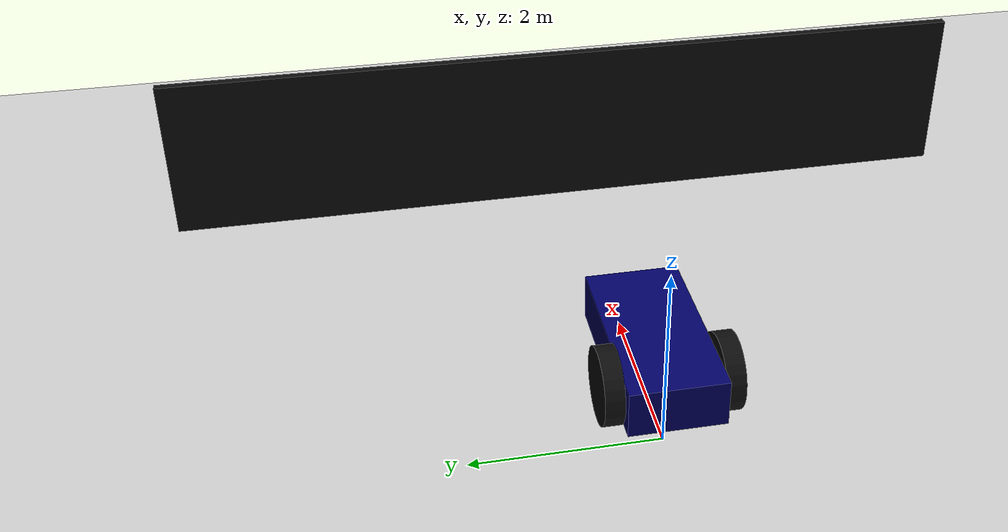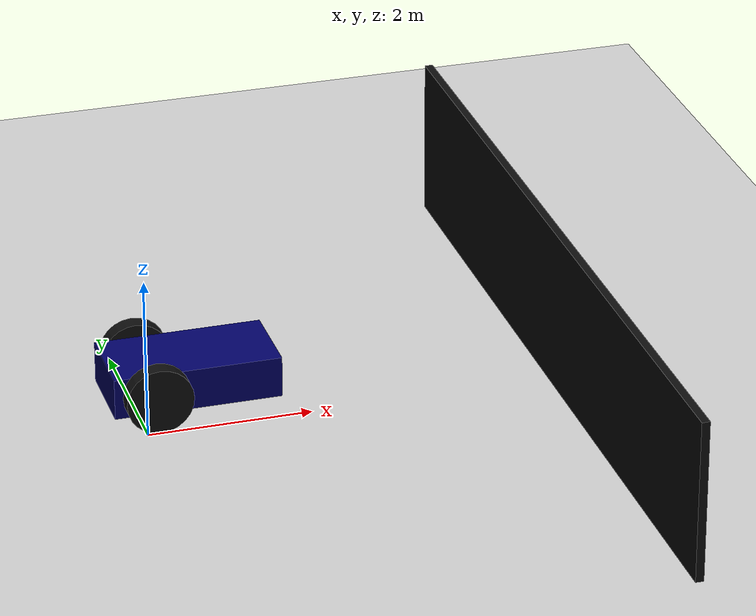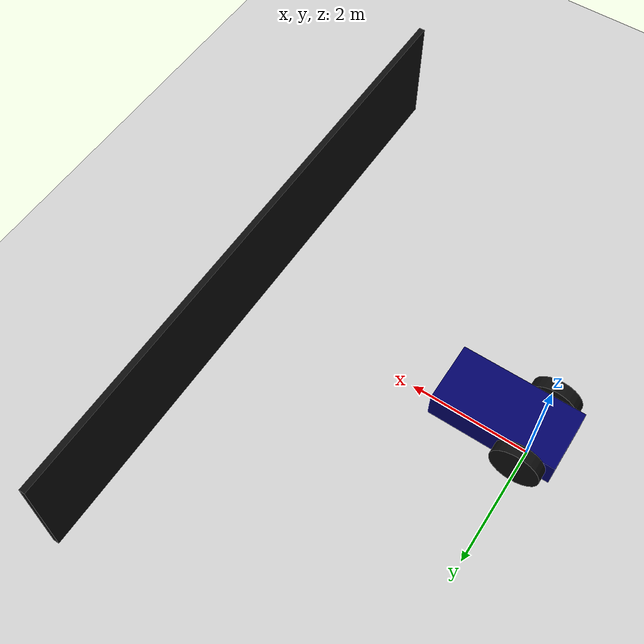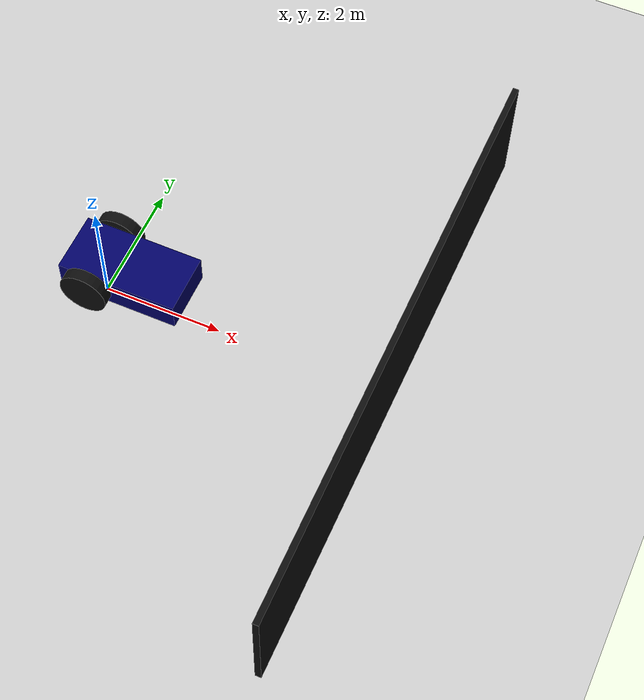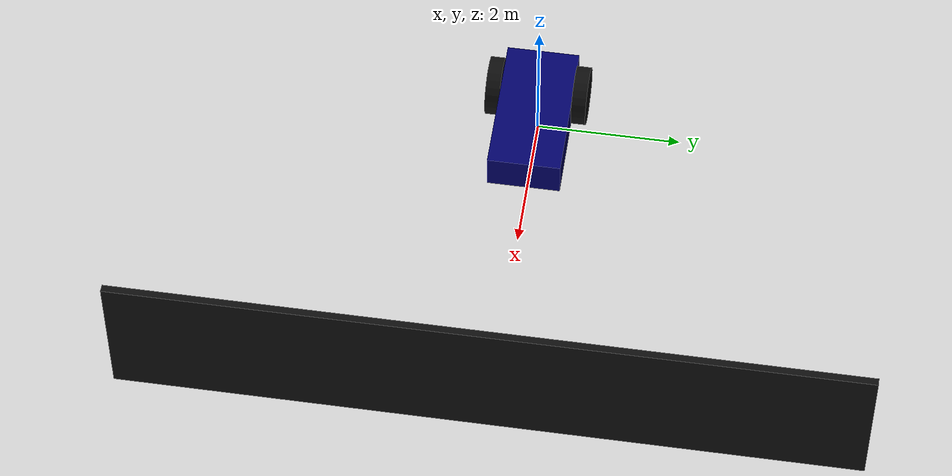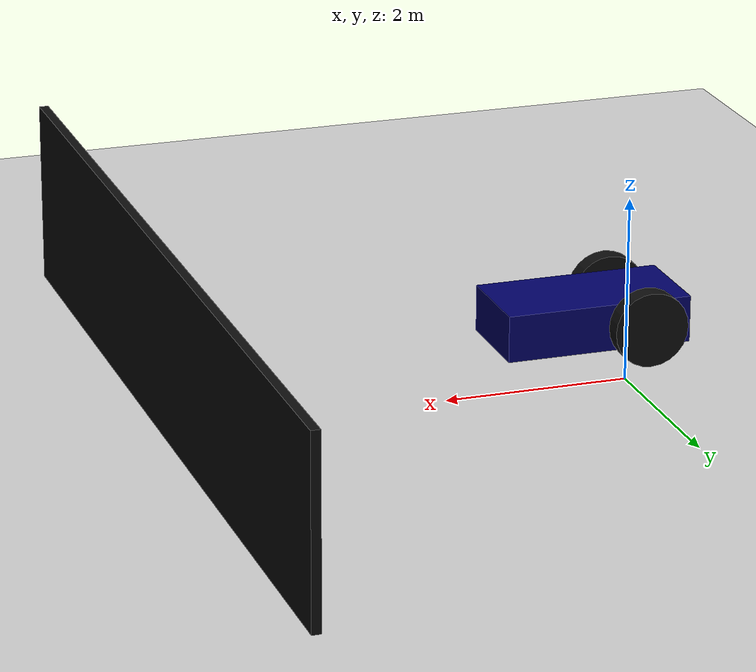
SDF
<sdf version="1.7">
  <world name="default">
    <plugin filename="libignition-gazebo-contact-system.so" name="ignition::gazebo::systems::Contact"/>

    <gui fullscreen="0">

      <!-- 3D SCENE -->
      <plugin filename="GzScene3D" name="3D View">
        <ignition-gui>
          <title>3D View</title>
          <property type="bool" key="showTitleBar">false</property>
          <property type="string" key="state">docked</property>
        </ignition-gui>

        <engine>ogre2</engine>
        <scene>scene</scene>
        <ambient_light>0.4 0.4 0.4</ambient_light>
        <background_color>0.8 0.8 0.8</background_color>
      </plugin>

      <!-- WORLD CONTROL -->
      <plugin filename="WorldControl" name="World Control">
        <ignition-gui>
          <title>World Control</title>
          <property type="bool" key="showTitleBar">false</property>
          <property type="bool" key="resizable">false</property>
          <property type="double" key="height">72</property>
          <property type="double" key="width">121</property>
          <property type="double" key="z">1</property>

          <property type="string" key="state">floating</property>
          <anchors target="3D View">
            <line own="left" target="left"/>
            <line own="bottom" target="bottom"/>
          </anchors>
        </ignition-gui>

        <play_pause>true</play_pause>
        <step>true</step>
        <start_paused>true</start_paused>
        <service>world/tubes_world/control</service>
        <stats_topic>world/tubes_world/stats</stats_topic>
      </plugin>

      <!-- WORLD STATS -->
      <plugin filename="WorldStats" name="World Stats">
        <ignition-gui>
          <title>World Stats</title>
          <property type="bool" key="showTitleBar">false</property>
          <property type="bool" key="resizable">false</property>
          <property type="double" key="height">110</property>
          <property type="double" key="width">290</property>
          <property type="double" key="z">1</property>

          <property type="string" key="state">floating</property>
          <anchors target="3D View">
            <line own="right" target="right"/>
            <line own="bottom" target="bottom"/>
          </anchors>
        </ignition-gui>

        <sim_time>true</sim_time>
        <real_time>true</real_time>
        <real_time_factor>true</real_time_factor>
        <iterations>true</iterations>
        <topic>world/tubes_world/stats</topic>
      </plugin>

      <plugin filename="EntityTree" name="Entity Tree">
      </plugin>

      <plugin filename="KeyPublisher" name="Key Publisher"/>
    </gui>

    <physics name='1ms' type='ignored'>
      <max_step_size>0.001</max_step_size>
      <real_time_factor>1</real_time_factor>
      <real_time_update_rate>1000</real_time_update_rate>
    </physics>
    <plugin name='gz::sim::systems::Physics' filename='gz-sim-physics-system'/>
    <plugin name='gz::sim::systems::UserCommands' filename='gz-sim-user-commands-system'/>
    <plugin name='gz::sim::systems::SceneBroadcaster' filename='gz-sim-scene-broadcaster-system'/>
    <plugin name='gz::sim::systems::Contact' filename='gz-sim-contact-system'/>
    <gravity>0 0 -9.8000000000000007</gravity>
    <magnetic_field>5.5644999999999998e-06 2.2875799999999999e-05 -4.2388400000000002e-05</magnetic_field>
    <atmosphere type='adiabatic'/>
    <scene>
      <ambient>0.400000006 0.400000006 0.400000006 1</ambient>
      <background>0.699999988 0.699999988 0.699999988 1</background>
      <shadows>true</shadows>
    </scene>

    <light name="sun" type="directional">
        <pose>0 0 10 0 -0.7854 0</pose>
        <diffuse>1.0 1.0 1.0 1.0</diffuse>
        <specular>1.0 1.0 1.0 1.0</specular>
        <attenuation>
            <range>100</range>
            <constant>0.1</constant>
            <linear>0.01</linear>
            <quadratic>0.002</quadratic>
        </attenuation>
        <cast_shadows>true</cast_shadows>
    </light>

    <light name="ambient_light" type="point">
        <pose>0 0 5 0 0 0</pose>
        <diffuse>0.5 0.5 0.5 1.0</diffuse>
        <specular>0.2 0.2 0.2 1.0</specular>
        <attenuation>
            <range>50</range>
            <constant>0.1</constant>
            <linear>0.1</linear>
            <quadratic>0.02</quadratic>
        </attenuation>
        <cast_shadows>false</cast_shadows>
    </light>

    <model name="ground_plane">
      <static>true</static>
      <link name="ground_link">
        <collision name="collision">
          <geometry>
            <plane>
              <normal>0 0 1</normal>
              <size>100 100</size>
            </plane>
          </geometry>
        </collision>
        <visual name="visual">
          <geometry>
            <plane>
              <normal>0 0 1</normal>
              <size>100 100</size>
            </plane>
          </geometry>
          <material>
            <script>
              <uri>file://media/materials/scripts/gazebo.material</uri>
              <name>Gazebo/Grey</name>
            </script>
          </material>
        </visual>
      </link>
    </model>

    <model name="wall">
      <static>true</static>
      <link name="wall_link">
        <collision name="collision">
          <geometry>
            <box>
              <size>0.1 10 2</size>
            </box>
          </geometry>
        </collision>
        <visual name="visual">
          <geometry>
            <box>
              <size>0.1 10 2</size>
            </box>
          </geometry>
          <material>
            <ambient>0.05 0.05 0.05 1</ambient>
            <diffuse>0.05 0.05 0.05 1</diffuse>
            <specular>0.1 0.1 0.1 1</specular>
          </material>
        </visual>

        <sensor name="wall_contact" type="contact">
          <contact>
            <collision>collision</collision>
          </contact>
        </sensor>
      </link>
      <plugin filename="libignition-gazebo-touchplugin-system.so" name="ignition::gazebo::systems::TouchPlugin">
        <target>my_robot</target>
        <namespace>wall</namespace>
        <time>0.001</time>
        <enable>true</enable>
      </plugin>
      <pose>5 0 1 0 0 0</pose>
    </model>

    <plugin filename="libignition-gazebo-triggered-publisher-system.so" name="ignition::gazebo::systems::TriggeredPublisher">
      <input type="gz.msgs.Boolean" topic="/wall/touched">
        <match>data: true</match>
      </input>
      <output type="gz.msgs.Twist" topic="/cmd_vel">
        linear: {x: 0.0}, angular: {z: 0.0}
      </output>

    </plugin>

    <include>
      <uri>/home/ahmrrzz/tubes_sekuro_ws/src/my_robot/models/my_robot/model.sdf</uri>
      <pose>0 0 0.4 0 0 0</pose>
    </include>

  </world>
</sdf>

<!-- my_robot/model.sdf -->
<sdf version="1.7">

    <model name="my_robot" canonical_link="chassis">

        <frame name="lidar_frame" attached_to="chassis">
            <pose>0.8 0 0.5 0 0 0</pose>
        </frame>

        <!-- CHASSIS -->
        <link name="chassis">
            <pose relative_to="__model__">0.5 0 0.4 0 0 0</pose>
            <inertial>
            <mass>1.14395</mass>
            <inertia>
                <ixx>0.095329</ixx>
                <ixy>0</ixy>
                <ixz>0</ixz>
                <iyy>0.381317</iyy>
                <iyz>0</iyz>
                <izz>0.476646</izz>
            </inertia>
            </inertial>

            <!-- VISUAL -->
            <visual name="visual">
            <geometry>
                <box>
                <size>2.0 1.0 0.5</size>
                </box>
            </geometry>
            <!-- COLOR -->
            <material>
                <ambient>0.0 0.0 0.3 1</ambient>
                <diffuse>0.0 0.0 0.4 1</diffuse>
                <specular>0.1 0.1 0.3 1</specular>
            </material>
            </visual>

            <collision name="collision">
                <geometry>
                    <box>
                    <size>2.0 1.0 0.5</size>
                    </box>
                </geometry>
            </collision>

            <sensor name="imu_sensor" type="imu">
                <always_on>true</always_on>
                <update_rate>1</update_rate>
                <visualize>true</visualize>
                <topic>imu</topic>
            </sensor>

            <sensor name="gpu_lidar" type="gpu_lidar">
                <pose relative_to="lidar_frame">0 0 0 0 0 0</pose>
                <topic>lidar</topic>
                <update_rate>10</update_rate>
                <ray>
                    <scan>
                        <horizontal>
                            <samples>640</samples>
                            <resolution>1</resolution>
                            <min_angle>-1.396263</min_angle>
                            <max_angle>1.396263</max_angle>
                        </horizontal>
                        <vertical>
                            <samples>1</samples>
                            <resolution>0.01</resolution>
                            <min_angle>0</min_angle>
                            <max_angle>0</max_angle>
                        </vertical>
                    </scan>
                    <range>
                        <min>0.08</min>
                        <max>10.0</max>
                        <resolution>0.01</resolution>
                    </range>
                </ray>
                <always_on>true</always_on>
                <visualize>true</visualize>

            </sensor>
        </link>

        <!-- RODA KIRI -->
        <link name="left_wheel">
            <pose relative_to="chassis">-0.5 0.6 0 -1.5707 0 0</pose>
            <inertial>
            <mass>1</mass>
            <inertia>
                <ixx>0.043333</ixx>
                <ixy>0</ixy>
                <ixz>0</ixz>
                <iyy>0.043333</iyy>
                <iyz>0</iyz>
                <izz>0.08</izz>
            </inertia>
            </inertial>

            <visual name="visual">
            <geometry>
                <cylinder>
                <radius>0.4</radius>
                <length>0.2</length>
                </cylinder>
            </geometry>
            <material>
                <ambient>0.05 0.05 0.05 1</ambient>
                <diffuse>0.05 0.05 0.05 1</diffuse>
                <specular>0.1 0.1 0.1 1</specular>
            </material>
            </visual>

            <collision name="collision">
            <geometry>
                <cylinder>
                <radius>0.4</radius>
                <length>0.2</length>
                </cylinder>
            </geometry>
            </collision>
        </link>

        <!-- RODA KANAN -->
        <link name="right_wheel">
            <pose relative_to="chassis">-0.5 -0.6 0 -1.5707 0 0</pose>
            <inertial>
            <mass>1</mass>
            <inertia>
                <ixx>0.043333</ixx>
                <ixy>0</ixy>
                <ixz>0</ixz>
                <iyy>0.043333</iyy>
                <iyz>0</iyz>
                <izz>0.08</izz>
            </inertia>
            </inertial>

            <visual name="visual">
            <geometry>
                <cylinder>
                <radius>0.4</radius>
                <length>0.2</length>
                </cylinder>
            </geometry>
            <material>
                <ambient>0.05 0.05 0.05 1</ambient>
                <diffuse>0.05 0.05 0.05 1</diffuse>
                <specular>0.1 0.1 0.1 1</specular>
            </material>
            </visual>

            <collision name="collision">
            <geometry>
                <cylinder>
                <radius>0.4</radius>
                <length>0.2</length>
                </cylinder>
            </geometry>
            </collision>
        </link>

        <frame name="caster_frame" attached_to="chassis">
            <pose>0.6 0 -0.2 0 0 0</pose>
        </frame>

        <link name="caster">
            <pose relative_to="caster_frame"/>
            <inertial>
            <mass>1</mass>
            <inertia>
                <ixx>0.016</ixx>
                <ixy>0</ixy>
                <ixz>0</ixz>
                <iyy>0.016</iyy>
                <iyz>0</iyz>
                <izz>0.016</izz>
            </inertia>
            </inertial>

            <visual name="visual">
            <geometry>
                <sphere>
                    <radius>0.2</radius>
                </sphere>
            </geometry>
            <material>
                <ambient>0.05 0.05 0.05 1</ambient>
                <diffuse>0.05 0.05 0.05 1</diffuse>
                <specular>0.1 0.1 0.1 1</specular>
            </material>
            </visual>

            <collision name="collision">
            <geometry>
                <sphere>
                    <radius>0.2</radius>
                </sphere>
            </geometry>
            </collision>
        </link>

        <!-- JOINT -->
        <joint name="left_wheel_joint" type="revolute">
            <pose relative_to="left_wheel"/>
            <parent>chassis</parent>
            <child>left_wheel</child>
            <axis>
            <xyz expressed_in="__model__">0 1 0</xyz>
            <limit>
                <lower>-1.79769e+308</lower>
                <upper>1.79769e+308</upper>
            </limit>
            </axis>
        </joint>

        <joint name="right_wheel_joint" type="revolute">
            <pose relative_to="right_wheel"/>
            <parent>chassis</parent>
            <child>right_wheel</child>
            <axis>
            <xyz expressed_in="__model__">0 1 0</xyz>
            <limit>
                <lower>-1.79769e+308</lower>
                <upper>1.79769e+308</upper>
            </limit>
            </axis>
        </joint>

        <joint name="caster_wheel" type="ball">
            <parent>chassis</parent>
            <child>caster</child>
        </joint>

        <plugin
            filename="libignition-gazebo-diff-drive-system.so"
            name="ignition::gazebo::systems::DiffDrive">
            <left_joint>left_wheel_joint</left_joint>
            <right_joint>right_wheel_joint</right_joint>
            <wheel_separation>1.2</wheel_separation>
            <wheel_radius>0.4</wheel_radius>
            <odom_publish_frequency>1</odom_publish_frequency>
            <topic>/cmd_vel</topic>
        </plugin>

        <!-- W = MOVE FORWARD -->
        <plugin filename="gz-sim-triggered-publisher-system" name="gz::sim::systems::TriggeredPublisher">
            <input type="gz.msgs.Int32" topic="/keyboard/keypress">
                <match field="data">87</match>
            </input>
            <output type="gz.msgs.Twist" topic="/cmd_vel">
                linear: {x: 0.5}, angular: {z: 0.0}
            </output>
        </plugin>

        <!-- S = MOVE BACKWARD -->

        <plugin filename="gz-sim-triggered-publisher-system" name="gz::sim::systems::TriggeredPublisher">
            <input type="gz.msgs.Int32" topic="/keyboard/keypress">
                <match field="data">83</match>
            </input>
            <output type="gz.msgs.Twist" topic="/cmd_vel">
                linear: {x: -0.5}, angular: {z: 0.0}
            </output>
        </plugin>

        <!-- A = TURN LEFT -->
        <plugin filename="gz-sim-triggered-publisher-system" name="gz::sim::systems::TriggeredPublisher">
            <input type="gz.msgs.Int32" topic="/keyboard/keypress">
                <match field="data">65</match>
            </input>
            <output type="gz.msgs.Twist" topic="/cmd_vel">
                linear: {x: 0.0}, angular: {z: 0.5}
            </output>
        </plugin>

        <!-- D = TURN RIGHT -->
        <plugin filename="gz-sim-triggered-publisher-system" name="gz::sim::systems::TriggeredPublisher">
            <input type="gz.msgs.Int32" topic="/keyboard/keypress">
                <match field="data">68</match>
            </input>
            <output type="gz.msgs.Twist" topic="/cmd_vel">
                linear: {x: 0.0}, angular: {z: -0.5}
            </output>
        </plugin>

        <!-- LIDAR -->

        <plugin filename="libignition-gazebo-imu-system.so" name="ignition::gazebo::systems::Imu"/>
        <plugin filename="libignition-gazebo-sensors-system.so" name="ignition::gazebo::systems::Sensors">
            <render_engine>ogre2</render_engine>
        </plugin>

    </model>

</sdf>
